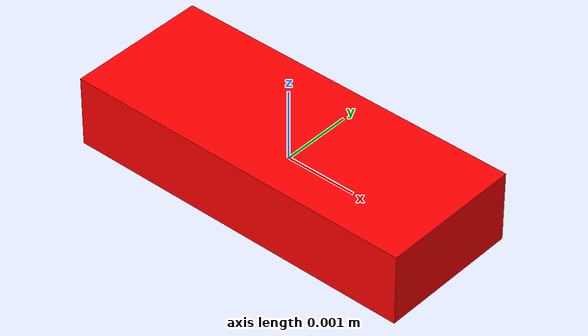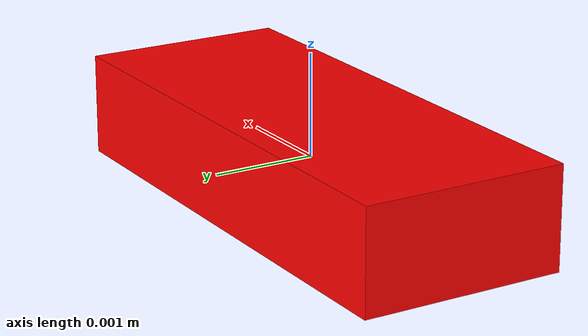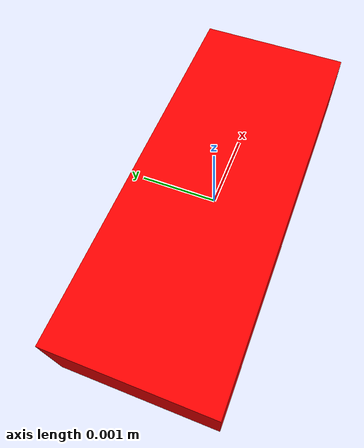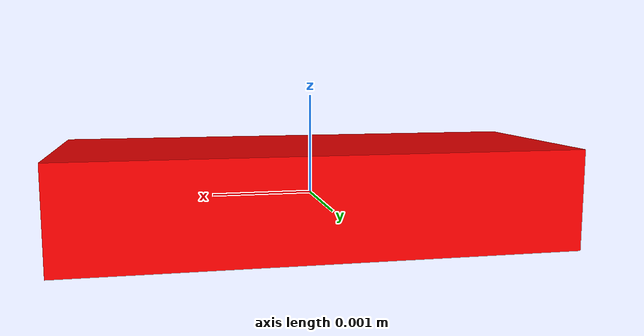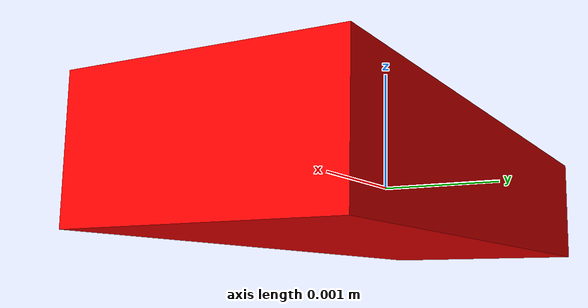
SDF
<?xml version='1.0'?>
<sdf version='1.4'>
  <model name="colored_block">
    <link name='link'>
      <pose>0.0 0 0.0 0 0 0</pose>
      <inertial>
        <mass>0.1</mass>
        <inertia>
          <ixx>0.01</ixx>
          <ixy>0</ixy>
          <ixz>0</ixz>
          <iyy>0.01</iyy>
          <iyz>0</iyz>
          <izz>0.01</izz>
        </inertia>
      </inertial>
     <collision name='collision'>
        <geometry>
          <box>
            <size>0.005 0.002 0.001</size>
          </box>
        </geometry>
       <surface>
            <friction>
              <ode>
                <mu>50.0</mu>
                <mu2>50.0</mu2>
              </ode>
            </friction>
            <contact>
              <ode>
                <kp>1000000.0</kp>
                <kd>100.0</kd>
                <max_vel>1.0</max_vel>
                <min_depth>0.0005</min_depth>
              </ode>
            </contact>
          </surface>
      </collision>

      <visual name='visual'>
        <geometry>
          <box>
            <size>0.005 0.002 0.001</size>
          </box>
        </geometry>
  <material>
    <ambient>1 0 0 1</ambient>
    <diffuse>1 0 0 1</diffuse>
    <specular>0.1 0.1 0.1 1</specular>
    <emissive>0 0 0 0</emissive>
  </material>
      </visual>
    </link>
  </model>
</sdf>
